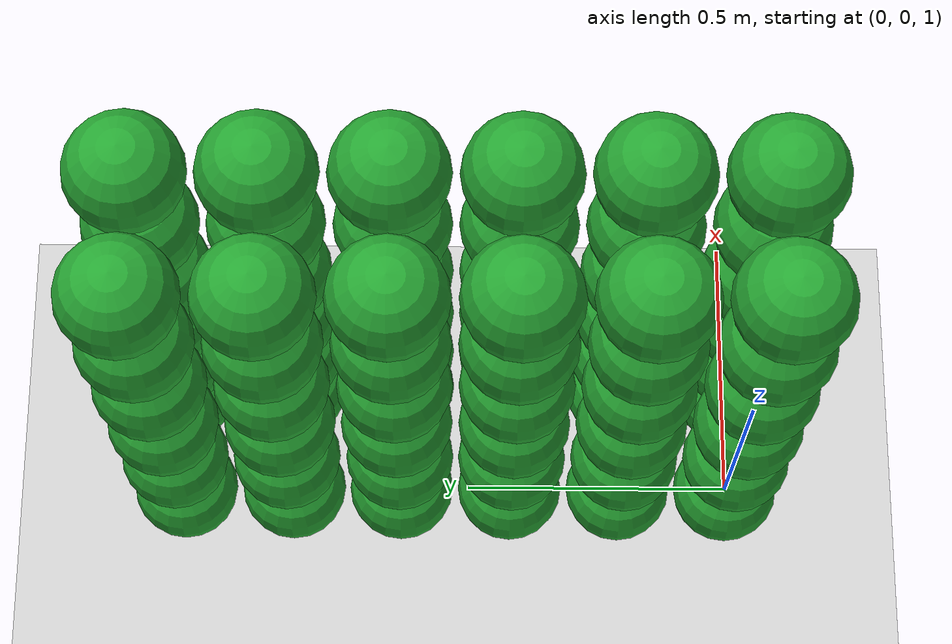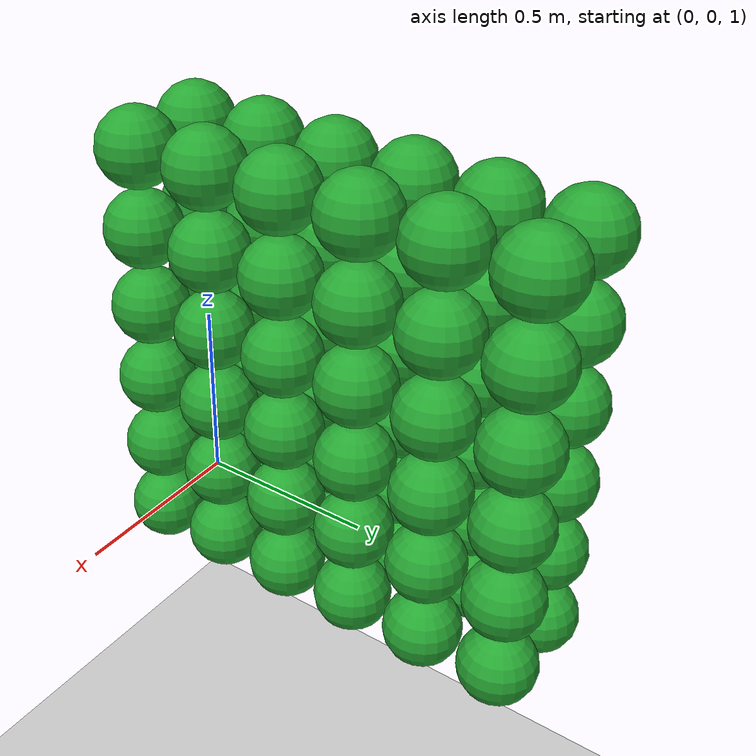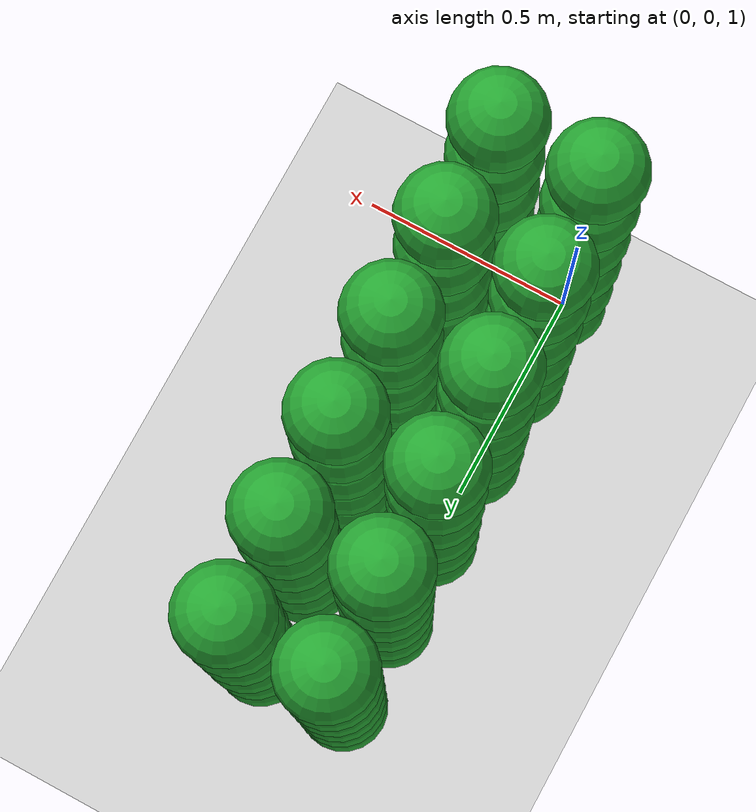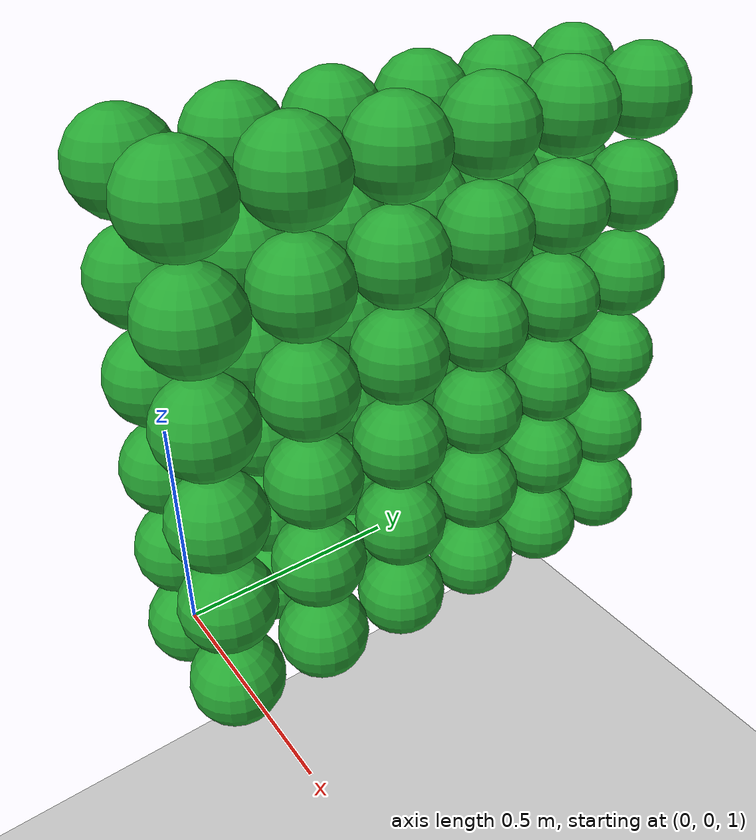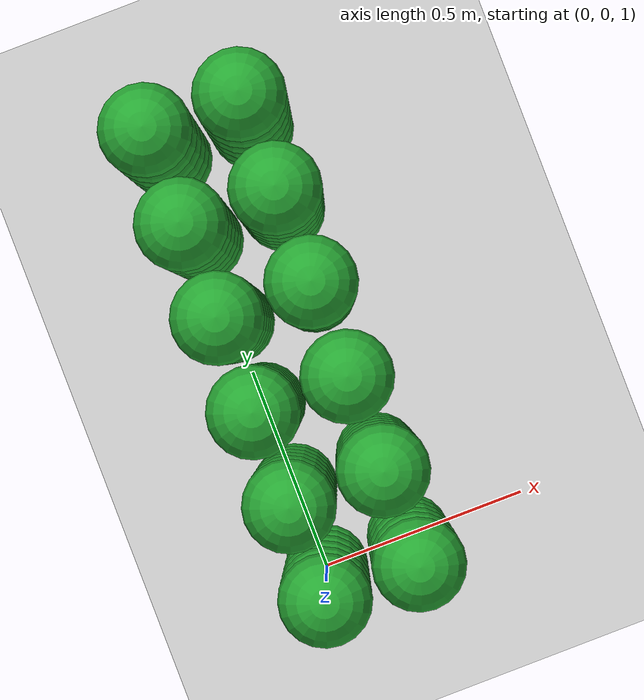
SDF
<sdf version="1.7">
 <world name="default">
  <model name="ground_plane">
   <static>1</static>
   <link name="link">
    <collision name="collision">
     <geometry><plane><normal>0 0 1</normal><size>100 100</size></plane></geometry>
     <surface>
      <contact><collide_bitmask>65535</collide_bitmask></contact>
      <friction><ode><mu>100</mu><mu2>50</mu2></ode></friction>
     </surface>
    </collision>
    <visual name="visual">
     <cast_shadows>0</cast_shadows>
     <geometry><plane><normal>0 0 1</normal><size>100 100</size></plane></geometry>
     <material>
      <script><uri>file://media/materials/scripts/gazebo.material</uri><name>Gazebo/Grey</name></script>
     </material>
    </visual>
   </link>
  </model>
  <model name="ball_0">
   <pose>0.000000 0.000000 1.000000 0 0 0</pose>
   <link name="link">
    <inertial><mass>10.000000</mass></inertial>
    <collision name="collision">
     <geometry><sphere><radius>0.100000</radius></sphere></geometry>
     <surface><friction><ode><mu>0</mu><mu2>0</mu2></ode></friction></surface>
    </collision>
    <visual name="visual">
     <geometry><sphere><radius>0.100000</radius></sphere></geometry>
     <material>
      <script><name>Gazebo/Green</name><uri>file://media/materials/scripts/gazebo.material</uri></script>
     </material>
    </visual>
   </link>
  </model>
  <model name="ball_1">
   <pose>0.000000 0.000000 1.209955 0 0 0</pose>
   <link name="link">
    <inertial><mass>10.000000</mass></inertial>
    <collision name="collision">
     <geometry><sphere><radius>0.100000</radius></sphere></geometry>
     <surface><friction><ode><mu>0</mu><mu2>0</mu2></ode></friction></surface>
    </collision>
    <visual name="visual">
     <geometry><sphere><radius>0.100000</radius></sphere></geometry>
     <material>
      <script><name>Gazebo/Green</name><uri>file://media/materials/scripts/gazebo.material</uri></script>
     </material>
    </visual>
   </link>
  </model>
  <model name="ball_2">
   <pose>0.000000 0.000000 1.420072 0 0 0</pose>
   <link name="link">
    <inertial><mass>10.000000</mass></inertial>
    <collision name="collision">
     <geometry><sphere><radius>0.100000</radius></sphere></geometry>
     <surface><friction><ode><mu>0</mu><mu2>0</mu2></ode></friction></surface>
    </collision>
    <visual name="visual">
     <geometry><sphere><radius>0.100000</radius></sphere></geometry>
     <material>
      <script><name>Gazebo/Green</name><uri>file://media/materials/scripts/gazebo.material</uri></script>
     </material>
    </visual>
   </link>
  </model>
  <model name="ball_3">
   <pose>0.000000 0.000000 1.629689 0 0 0</pose>
   <link name="link">
    <inertial><mass>10.000000</mass></inertial>
    <collision name="collision">
     <geometry><sphere><radius>0.100000</radius></sphere></geometry>
     <surface><friction><ode><mu>0</mu><mu2>0</mu2></ode></friction></surface>
    </collision>
    <visual name="visual">
     <geometry><sphere><radius>0.100000</radius></sphere></geometry>
     <material>
      <script><name>Gazebo/Green</name><uri>file://media/materials/scripts/gazebo.material</uri></script>
     </material>
    </visual>
   </link>
  </model>
  <model name="ball_4">
   <pose>0.000000 0.000000 1.840104 0 0 0</pose>
   <link name="link">
    <inertial><mass>10.000000</mass></inertial>
    <collision name="collision">
     <geometry><sphere><radius>0.100000</radius></sphere></geometry>
     <surface><friction><ode><mu>0</mu><mu2>0</mu2></ode></friction></surface>
    </collision>
    <visual name="visual">
     <geometry><sphere><radius>0.100000</radius></sphere></geometry>
     <material>
      <script><name>Gazebo/Green</name><uri>file://media/materials/scripts/gazebo.material</uri></script>
     </material>
    </visual>
   </link>
  </model>
  <model name="ball_5">
   <pose>0.000000 0.000000 2.049521 0 0 0</pose>
   <link name="link">
    <inertial><mass>10.000000</mass></inertial>
    <collision name="collision">
     <geometry><sphere><radius>0.100000</radius></sphere></geometry>
     <surface><friction><ode><mu>0</mu><mu2>0</mu2></ode></friction></surface>
    </collision>
    <visual name="visual">
     <geometry><sphere><radius>0.100000</radius></sphere></geometry>
     <material>
      <script><name>Gazebo/Green</name><uri>file://media/materials/scripts/gazebo.material</uri></script>
     </material>
    </visual>
   </link>
  </model>
  <model name="ball_6">
   <pose>0.000000 0.209839 1.000000 0 0 0</pose>
   <link name="link">
    <inertial><mass>10.000000</mass></inertial>
    <collision name="collision">
     <geometry><sphere><radius>0.100000</radius></sphere></geometry>
     <surface><friction><ode><mu>0</mu><mu2>0</mu2></ode></friction></surface>
    </collision>
    <visual name="visual">
     <geometry><sphere><radius>0.100000</radius></sphere></geometry>
     <material>
      <script><name>Gazebo/Green</name><uri>file://media/materials/scripts/gazebo.material</uri></script>
     </material>
    </visual>
   </link>
  </model>
  <model name="ball_7">
   <pose>0.000000 0.210104 1.210104 0 0 0</pose>
   <link name="link">
    <inertial><mass>10.000000</mass></inertial>
    <collision name="collision">
     <geometry><sphere><radius>0.100000</radius></sphere></geometry>
     <surface><friction><ode><mu>0</mu><mu2>0</mu2></ode></friction></surface>
    </collision>
    <visual name="visual">
     <geometry><sphere><radius>0.100000</radius></sphere></geometry>
     <material>
      <script><name>Gazebo/Green</name><uri>file://media/materials/scripts/gazebo.material</uri></script>
     </material>
    </visual>
   </link>
  </model>
  <model name="ball_8">
   <pose>0.000000 0.209921 1.419842 0 0 0</pose>
   <link name="link">
    <inertial><mass>10.000000</mass></inertial>
    <collision name="collision">
     <geometry><sphere><radius>0.100000</radius></sphere></geometry>
     <surface><friction><ode><mu>0</mu><mu2>0</mu2></ode></friction></surface>
    </collision>
    <visual name="visual">
     <geometry><sphere><radius>0.100000</radius></sphere></geometry>
     <material>
      <script><name>Gazebo/Green</name><uri>file://media/materials/scripts/gazebo.material</uri></script>
     </material>
    </visual>
   </link>
  </model>
  <model name="ball_9">
   <pose>0.000000 0.209934 1.629803 0 0 0</pose>
   <link name="link">
    <inertial><mass>10.000000</mass></inertial>
    <collision name="collision">
     <geometry><sphere><radius>0.100000</radius></sphere></geometry>
     <surface><friction><ode><mu>0</mu><mu2>0</mu2></ode></friction></surface>
    </collision>
    <visual name="visual">
     <geometry><sphere><radius>0.100000</radius></sphere></geometry>
     <material>
      <script><name>Gazebo/Green</name><uri>file://media/materials/scripts/gazebo.material</uri></script>
     </material>
    </visual>
   </link>
  </model>
  <model name="ball_10">
   <pose>0.000000 0.210197 1.840787 0 0 0</pose>
   <link name="link">
    <inertial><mass>10.000000</mass></inertial>
    <collision name="collision">
     <geometry><sphere><radius>0.100000</radius></sphere></geometry>
     <surface><friction><ode><mu>0</mu><mu2>0</mu2></ode></friction></surface>
    </collision>
    <visual name="visual">
     <geometry><sphere><radius>0.100000</radius></sphere></geometry>
     <material>
      <script><name>Gazebo/Green</name><uri>file://media/materials/scripts/gazebo.material</uri></script>
     </material>
    </visual>
   </link>
  </model>
  <model name="ball_11">
   <pose>0.000000 0.210185 2.050924 0 0 0</pose>
   <link name="link">
    <inertial><mass>10.000000</mass></inertial>
    <collision name="collision">
     <geometry><sphere><radius>0.100000</radius></sphere></geometry>
     <surface><friction><ode><mu>0</mu><mu2>0</mu2></ode></friction></surface>
    </collision>
    <visual name="visual">
     <geometry><sphere><radius>0.100000</radius></sphere></geometry>
     <material>
      <script><name>Gazebo/Green</name><uri>file://media/materials/scripts/gazebo.material</uri></script>
     </material>
    </visual>
   </link>
  </model>
  <model name="ball_12">
   <pose>0.000000 0.420170 1.000000 0 0 0</pose>
   <link name="link">
    <inertial><mass>10.000000</mass></inertial>
    <collision name="collision">
     <geometry><sphere><radius>0.100000</radius></sphere></geometry>
     <surface><friction><ode><mu>0</mu><mu2>0</mu2></ode></friction></surface>
    </collision>
    <visual name="visual">
     <geometry><sphere><radius>0.100000</radius></sphere></geometry>
     <material>
      <script><name>Gazebo/Green</name><uri>file://media/materials/scripts/gazebo.material</uri></script>
     </material>
    </visual>
   </link>
  </model>
  <model name="ball_13">
   <pose>0.000000 0.420080 1.210040 0 0 0</pose>
   <link name="link">
    <inertial><mass>10.000000</mass></inertial>
    <collision name="collision">
     <geometry><sphere><radius>0.100000</radius></sphere></geometry>
     <surface><friction><ode><mu>0</mu><mu2>0</mu2></ode></friction></surface>
    </collision>
    <visual name="visual">
     <geometry><sphere><radius>0.100000</radius></sphere></geometry>
     <material>
      <script><name>Gazebo/Green</name><uri>file://media/materials/scripts/gazebo.material</uri></script>
     </material>
    </visual>
   </link>
  </model>
  <model name="ball_14">
   <pose>0.000000 0.419637 1.419637 0 0 0</pose>
   <link name="link">
    <inertial><mass>10.000000</mass></inertial>
    <collision name="collision">
     <geometry><sphere><radius>0.100000</radius></sphere></geometry>
     <surface><friction><ode><mu>0</mu><mu2>0</mu2></ode></friction></surface>
    </collision>
    <visual name="visual">
     <geometry><sphere><radius>0.100000</radius></sphere></geometry>
     <material>
      <script><name>Gazebo/Green</name><uri>file://media/materials/scripts/gazebo.material</uri></script>
     </material>
    </visual>
   </link>
  </model>
  <model name="ball_15">
   <pose>0.000000 0.419633 1.629450 0 0 0</pose>
   <link name="link">
    <inertial><mass>10.000000</mass></inertial>
    <collision name="collision">
     <geometry><sphere><radius>0.100000</radius></sphere></geometry>
     <surface><friction><ode><mu>0</mu><mu2>0</mu2></ode></friction></surface>
    </collision>
    <visual name="visual">
     <geometry><sphere><radius>0.100000</radius></sphere></geometry>
     <material>
      <script><name>Gazebo/Green</name><uri>file://media/materials/scripts/gazebo.material</uri></script>
     </material>
    </visual>
   </link>
  </model>
  <model name="ball_16">
   <pose>0.000000 0.420401 1.840802 0 0 0</pose>
   <link name="link">
    <inertial><mass>10.000000</mass></inertial>
    <collision name="collision">
     <geometry><sphere><radius>0.100000</radius></sphere></geometry>
     <surface><friction><ode><mu>0</mu><mu2>0</mu2></ode></friction></surface>
    </collision>
    <visual name="visual">
     <geometry><sphere><radius>0.100000</radius></sphere></geometry>
     <material>
      <script><name>Gazebo/Green</name><uri>file://media/materials/scripts/gazebo.material</uri></script>
     </material>
    </visual>
   </link>
  </model>
  <model name="ball_17">
   <pose>0.000000 0.419922 2.049804 0 0 0</pose>
   <link name="link">
    <inertial><mass>10.000000</mass></inertial>
    <collision name="collision">
     <geometry><sphere><radius>0.100000</radius></sphere></geometry>
     <surface><friction><ode><mu>0</mu><mu2>0</mu2></ode></friction></surface>
    </collision>
    <visual name="visual">
     <geometry><sphere><radius>0.100000</radius></sphere></geometry>
     <material>
      <script><name>Gazebo/Green</name><uri>file://media/materials/scripts/gazebo.material</uri></script>
     </material>
    </visual>
   </link>
  </model>
  <model name="ball_18">
   <pose>0.000000 0.630081 1.000000 0 0 0</pose>
   <link name="link">
    <inertial><mass>10.000000</mass></inertial>
    <collision name="collision">
     <geometry><sphere><radius>0.100000</radius></sphere></geometry>
     <surface><friction><ode><mu>0</mu><mu2>0</mu2></ode></friction></surface>
    </collision>
    <visual name="visual">
     <geometry><sphere><radius>0.100000</radius></sphere></geometry>
     <material>
      <script><name>Gazebo/Green</name><uri>file://media/materials/scripts/gazebo.material</uri></script>
     </material>
    </visual>
   </link>
  </model>
  <model name="ball_19">
   <pose>0.000000 0.629412 1.209804 0 0 0</pose>
   <link name="link">
    <inertial><mass>10.000000</mass></inertial>
    <collision name="collision">
     <geometry><sphere><radius>0.100000</radius></sphere></geometry>
     <surface><friction><ode><mu>0</mu><mu2>0</mu2></ode></friction></surface>
    </collision>
    <visual name="visual">
     <geometry><sphere><radius>0.100000</radius></sphere></geometry>
     <material>
      <script><name>Gazebo/Green</name><uri>file://media/materials/scripts/gazebo.material</uri></script>
     </material>
    </visual>
   </link>
  </model>
  <model name="ball_20">
   <pose>0.000000 0.630457 1.420305 0 0 0</pose>
   <link name="link">
    <inertial><mass>10.000000</mass></inertial>
    <collision name="collision">
     <geometry><sphere><radius>0.100000</radius></sphere></geometry>
     <surface><friction><ode><mu>0</mu><mu2>0</mu2></ode></friction></surface>
    </collision>
    <visual name="visual">
     <geometry><sphere><radius>0.100000</radius></sphere></geometry>
     <material>
      <script><name>Gazebo/Green</name><uri>file://media/materials/scripts/gazebo.material</uri></script>
     </material>
    </visual>
   </link>
  </model>
  <model name="ball_21">
   <pose>0.000000 0.629525 1.629525 0 0 0</pose>
   <link name="link">
    <inertial><mass>10.000000</mass></inertial>
    <collision name="collision">
     <geometry><sphere><radius>0.100000</radius></sphere></geometry>
     <surface><friction><ode><mu>0</mu><mu2>0</mu2></ode></friction></surface>
    </collision>
    <visual name="visual">
     <geometry><sphere><radius>0.100000</radius></sphere></geometry>
     <material>
      <script><name>Gazebo/Green</name><uri>file://media/materials/scripts/gazebo.material</uri></script>
     </material>
    </visual>
   </link>
  </model>
  <model name="ball_22">
   <pose>0.000000 0.630356 1.840474 0 0 0</pose>
   <link name="link">
    <inertial><mass>10.000000</mass></inertial>
    <collision name="collision">
     <geometry><sphere><radius>0.100000</radius></sphere></geometry>
     <surface><friction><ode><mu>0</mu><mu2>0</mu2></ode></friction></surface>
    </collision>
    <visual name="visual">
     <geometry><sphere><radius>0.100000</radius></sphere></geometry>
     <material>
      <script><name>Gazebo/Green</name><uri>file://media/materials/scripts/gazebo.material</uri></script>
     </material>
    </visual>
   </link>
  </model>
  <model name="ball_23">
   <pose>0.000000 0.630212 2.050354 0 0 0</pose>
   <link name="link">
    <inertial><mass>10.000000</mass></inertial>
    <collision name="collision">
     <geometry><sphere><radius>0.100000</radius></sphere></geometry>
     <surface><friction><ode><mu>0</mu><mu2>0</mu2></ode></friction></surface>
    </collision>
    <visual name="visual">
     <geometry><sphere><radius>0.100000</radius></sphere></geometry>
     <material>
      <script><name>Gazebo/Green</name><uri>file://media/materials/scripts/gazebo.material</uri></script>
     </material>
    </visual>
   </link>
  </model>
  <model name="ball_24">
   <pose>0.000000 0.839498 1.000000 0 0 0</pose>
   <link name="link">
    <inertial><mass>10.000000</mass></inertial>
    <collision name="collision">
     <geometry><sphere><radius>0.100000</radius></sphere></geometry>
     <surface><friction><ode><mu>0</mu><mu2>0</mu2></ode></friction></surface>
    </collision>
    <visual name="visual">
     <geometry><sphere><radius>0.100000</radius></sphere></geometry>
     <material>
      <script><name>Gazebo/Green</name><uri>file://media/materials/scripts/gazebo.material</uri></script>
     </material>
    </visual>
   </link>
  </model>
  <model name="ball_25">
   <pose>0.000000 0.840572 1.210143 0 0 0</pose>
   <link name="link">
    <inertial><mass>10.000000</mass></inertial>
    <collision name="collision">
     <geometry><sphere><radius>0.100000</radius></sphere></geometry>
     <surface><friction><ode><mu>0</mu><mu2>0</mu2></ode></friction></surface>
    </collision>
    <visual name="visual">
     <geometry><sphere><radius>0.100000</radius></sphere></geometry>
     <material>
      <script><name>Gazebo/Green</name><uri>file://media/materials/scripts/gazebo.material</uri></script>
     </material>
    </visual>
   </link>
  </model>
  <model name="ball_26">
   <pose>0.000000 0.839750 1.419875 0 0 0</pose>
   <link name="link">
    <inertial><mass>10.000000</mass></inertial>
    <collision name="collision">
     <geometry><sphere><radius>0.100000</radius></sphere></geometry>
     <surface><friction><ode><mu>0</mu><mu2>0</mu2></ode></friction></surface>
    </collision>
    <visual name="visual">
     <geometry><sphere><radius>0.100000</radius></sphere></geometry>
     <material>
      <script><name>Gazebo/Green</name><uri>file://media/materials/scripts/gazebo.material</uri></script>
     </material>
    </visual>
   </link>
  </model>
  <model name="ball_27">
   <pose>0.000000 0.839731 1.629798 0 0 0</pose>
   <link name="link">
    <inertial><mass>10.000000</mass></inertial>
    <collision name="collision">
     <geometry><sphere><radius>0.100000</radius></sphere></geometry>
     <surface><friction><ode><mu>0</mu><mu2>0</mu2></ode></friction></surface>
    </collision>
    <visual name="visual">
     <geometry><sphere><radius>0.100000</radius></sphere></geometry>
     <material>
      <script><name>Gazebo/Green</name><uri>file://media/materials/scripts/gazebo.material</uri></script>
     </material>
    </visual>
   </link>
  </model>
  <model name="ball_28">
   <pose>0.000000 0.839965 1.839965 0 0 0</pose>
   <link name="link">
    <inertial><mass>10.000000</mass></inertial>
    <collision name="collision">
     <geometry><sphere><radius>0.100000</radius></sphere></geometry>
     <surface><friction><ode><mu>0</mu><mu2>0</mu2></ode></friction></surface>
    </collision>
    <visual name="visual">
     <geometry><sphere><radius>0.100000</radius></sphere></geometry>
     <material>
      <script><name>Gazebo/Green</name><uri>file://media/materials/scripts/gazebo.material</uri></script>
     </material>
    </visual>
   </link>
  </model>
  <model name="ball_29">
   <pose>0.000000 0.839703 2.049629 0 0 0</pose>
   <link name="link">
    <inertial><mass>10.000000</mass></inertial>
    <collision name="collision">
     <geometry><sphere><radius>0.100000</radius></sphere></geometry>
     <surface><friction><ode><mu>0</mu><mu2>0</mu2></ode></friction></surface>
    </collision>
    <visual name="visual">
     <geometry><sphere><radius>0.100000</radius></sphere></geometry>
     <material>
      <script><name>Gazebo/Green</name><uri>file://media/materials/scripts/gazebo.material</uri></script>
     </material>
    </visual>
   </link>
  </model>
  <model name="ball_30">
   <pose>0.000000 1.050613 1.000000 0 0 0</pose>
   <link name="link">
    <inertial><mass>10.000000</mass></inertial>
    <collision name="collision">
     <geometry><sphere><radius>0.100000</radius></sphere></geometry>
     <surface><friction><ode><mu>0</mu><mu2>0</mu2></ode></friction></surface>
    </collision>
    <visual name="visual">
     <geometry><sphere><radius>0.100000</radius></sphere></geometry>
     <material>
      <script><name>Gazebo/Green</name><uri>file://media/materials/scripts/gazebo.material</uri></script>
     </material>
    </visual>
   </link>
  </model>
  <model name="ball_31">
   <pose>0.000000 1.050247 1.210049 0 0 0</pose>
   <link name="link">
    <inertial><mass>10.000000</mass></inertial>
    <collision name="collision">
     <geometry><sphere><radius>0.100000</radius></sphere></geometry>
     <surface><friction><ode><mu>0</mu><mu2>0</mu2></ode></friction></surface>
    </collision>
    <visual name="visual">
     <geometry><sphere><radius>0.100000</radius></sphere></geometry>
     <material>
      <script><name>Gazebo/Green</name><uri>file://media/materials/scripts/gazebo.material</uri></script>
     </material>
    </visual>
   </link>
  </model>
  <model name="ball_32">
   <pose>0.000000 1.049415 1.419766 0 0 0</pose>
   <link name="link">
    <inertial><mass>10.000000</mass></inertial>
    <collision name="collision">
     <geometry><sphere><radius>0.100000</radius></sphere></geometry>
     <surface><friction><ode><mu>0</mu><mu2>0</mu2></ode></friction></surface>
    </collision>
    <visual name="visual">
     <geometry><sphere><radius>0.100000</radius></sphere></geometry>
     <material>
      <script><name>Gazebo/Green</name><uri>file://media/materials/scripts/gazebo.material</uri></script>
     </material>
    </visual>
   </link>
  </model>
  <model name="ball_33">
   <pose>0.000000 1.049330 1.629598 0 0 0</pose>
   <link name="link">
    <inertial><mass>10.000000</mass></inertial>
    <collision name="collision">
     <geometry><sphere><radius>0.100000</radius></sphere></geometry>
     <surface><friction><ode><mu>0</mu><mu2>0</mu2></ode></friction></surface>
    </collision>
    <visual name="visual">
     <geometry><sphere><radius>0.100000</radius></sphere></geometry>
     <material>
      <script><name>Gazebo/Green</name><uri>file://media/materials/scripts/gazebo.material</uri></script>
     </material>
    </visual>
   </link>
  </model>
  <model name="ball_34">
   <pose>0.000000 1.049641 1.839713 0 0 0</pose>
   <link name="link">
    <inertial><mass>10.000000</mass></inertial>
    <collision name="collision">
     <geometry><sphere><radius>0.100000</radius></sphere></geometry>
     <surface><friction><ode><mu>0</mu><mu2>0</mu2></ode></friction></surface>
    </collision>
    <visual name="visual">
     <geometry><sphere><radius>0.100000</radius></sphere></geometry>
     <material>
      <script><name>Gazebo/Green</name><uri>file://media/materials/scripts/gazebo.material</uri></script>
     </material>
    </visual>
   </link>
  </model>
  <model name="ball_35">
   <pose>0.000000 1.049948 2.049948 0 0 0</pose>
   <link name="link">
    <inertial><mass>10.000000</mass></inertial>
    <collision name="collision">
     <geometry><sphere><radius>0.100000</radius></sphere></geometry>
     <surface><friction><ode><mu>0</mu><mu2>0</mu2></ode></friction></surface>
    </collision>
    <visual name="visual">
     <geometry><sphere><radius>0.100000</radius></sphere></geometry>
     <material>
      <script><name>Gazebo/Green</name><uri>file://media/materials/scripts/gazebo.material</uri></script>
     </material>
    </visual>
   </link>
  </model>
  <model name="ball_36">
   <pose>0.210188 0.000000 1.000000 0 0 0</pose>
   <link name="link">
    <inertial><mass>10.000000</mass></inertial>
    <collision name="collision">
     <geometry><sphere><radius>0.100000</radius></sphere></geometry>
     <surface><friction><ode><mu>0</mu><mu2>0</mu2></ode></friction></surface>
    </collision>
    <visual name="visual">
     <geometry><sphere><radius>0.100000</radius></sphere></geometry>
     <material>
      <script><name>Gazebo/Green</name><uri>file://media/materials/scripts/gazebo.material</uri></script>
     </material>
    </visual>
   </link>
  </model>
  <model name="ball_37">
   <pose>0.210015 0.000000 1.210015 0 0 0</pose>
   <link name="link">
    <inertial><mass>10.000000</mass></inertial>
    <collision name="collision">
     <geometry><sphere><radius>0.100000</radius></sphere></geometry>
     <surface><friction><ode><mu>0</mu><mu2>0</mu2></ode></friction></surface>
    </collision>
    <visual name="visual">
     <geometry><sphere><radius>0.100000</radius></sphere></geometry>
     <material>
      <script><name>Gazebo/Green</name><uri>file://media/materials/scripts/gazebo.material</uri></script>
     </material>
    </visual>
   </link>
  </model>
  <model name="ball_38">
   <pose>0.209962 0.000000 1.419924 0 0 0</pose>
   <link name="link">
    <inertial><mass>10.000000</mass></inertial>
    <collision name="collision">
     <geometry><sphere><radius>0.100000</radius></sphere></geometry>
     <surface><friction><ode><mu>0</mu><mu2>0</mu2></ode></friction></surface>
    </collision>
    <visual name="visual">
     <geometry><sphere><radius>0.100000</radius></sphere></geometry>
     <material>
      <script><name>Gazebo/Green</name><uri>file://media/materials/scripts/gazebo.material</uri></script>
     </material>
    </visual>
   </link>
  </model>
  <model name="ball_39">
   <pose>0.209910 0.000000 1.629731 0 0 0</pose>
   <link name="link">
    <inertial><mass>10.000000</mass></inertial>
    <collision name="collision">
     <geometry><sphere><radius>0.100000</radius></sphere></geometry>
     <surface><friction><ode><mu>0</mu><mu2>0</mu2></ode></friction></surface>
    </collision>
    <visual name="visual">
     <geometry><sphere><radius>0.100000</radius></sphere></geometry>
     <material>
      <script><name>Gazebo/Green</name><uri>file://media/materials/scripts/gazebo.material</uri></script>
     </material>
    </visual>
   </link>
  </model>
  <model name="ball_40">
   <pose>0.210207 0.000000 1.840830 0 0 0</pose>
   <link name="link">
    <inertial><mass>10.000000</mass></inertial>
    <collision name="collision">
     <geometry><sphere><radius>0.100000</radius></sphere></geometry>
     <surface><friction><ode><mu>0</mu><mu2>0</mu2></ode></friction></surface>
    </collision>
    <visual name="visual">
     <geometry><sphere><radius>0.100000</radius></sphere></geometry>
     <material>
      <script><name>Gazebo/Green</name><uri>file://media/materials/scripts/gazebo.material</uri></script>
     </material>
    </visual>
   </link>
  </model>
  <model name="ball_41">
   <pose>0.209830 0.000000 2.049150 0 0 0</pose>
   <link name="link">
    <inertial><mass>10.000000</mass></inertial>
    <collision name="collision">
     <geometry><sphere><radius>0.100000</radius></sphere></geometry>
     <surface><friction><ode><mu>0</mu><mu2>0</mu2></ode></friction></surface>
    </collision>
    <visual name="visual">
     <geometry><sphere><radius>0.100000</radius></sphere></geometry>
     <material>
      <script><name>Gazebo/Green</name><uri>file://media/materials/scripts/gazebo.material</uri></script>
     </material>
    </visual>
   </link>
  </model>
  <model name="ball_42">
   <pose>0.210011 0.210011 1.000000 0 0 0</pose>
   <link name="link">
    <inertial><mass>10.000000</mass></inertial>
    <collision name="collision">
     <geometry><sphere><radius>0.100000</radius></sphere></geometry>
     <surface><friction><ode><mu>0</mu><mu2>0</mu2></ode></friction></surface>
    </collision>
    <visual name="visual">
     <geometry><sphere><radius>0.100000</radius></sphere></geometry>
     <material>
      <script><name>Gazebo/Green</name><uri>file://media/materials/scripts/gazebo.material</uri></script>
     </material>
    </visual>
   </link>
  </model>
  <model name="ball_43">
   <pose>0.209952 0.209952 1.209952 0 0 0</pose>
   <link name="link">
    <inertial><mass>10.000000</mass></inertial>
    <collision name="collision">
     <geometry><sphere><radius>0.100000</radius></sphere></geometry>
     <surface><friction><ode><mu>0</mu><mu2>0</mu2></ode></friction></surface>
    </collision>
    <visual name="visual">
     <geometry><sphere><radius>0.100000</radius></sphere></geometry>
     <material>
      <script><name>Gazebo/Green</name><uri>file://media/materials/scripts/gazebo.material</uri></script>
     </material>
    </visual>
   </link>
  </model>
  <model name="ball_44">
   <pose>0.209913 0.209913 1.419826 0 0 0</pose>
   <link name="link">
    <inertial><mass>10.000000</mass></inertial>
    <collision name="collision">
     <geometry><sphere><radius>0.100000</radius></sphere></geometry>
     <surface><friction><ode><mu>0</mu><mu2>0</mu2></ode></friction></surface>
    </collision>
    <visual name="visual">
     <geometry><sphere><radius>0.100000</radius></sphere></geometry>
     <material>
      <script><name>Gazebo/Green</name><uri>file://media/materials/scripts/gazebo.material</uri></script>
     </material>
    </visual>
   </link>
  </model>
  <model name="ball_45">
   <pose>0.209845 0.209845 1.629534 0 0 0</pose>
   <link name="link">
    <inertial><mass>10.000000</mass></inertial>
    <collision name="collision">
     <geometry><sphere><radius>0.100000</radius></sphere></geometry>
     <surface><friction><ode><mu>0</mu><mu2>0</mu2></ode></friction></surface>
    </collision>
    <visual name="visual">
     <geometry><sphere><radius>0.100000</radius></sphere></geometry>
     <material>
      <script><name>Gazebo/Green</name><uri>file://media/materials/scripts/gazebo.material</uri></script>
     </material>
    </visual>
   </link>
  </model>
  <model name="ball_46">
   <pose>0.209902 0.209902 1.839610 0 0 0</pose>
   <link name="link">
    <inertial><mass>10.000000</mass></inertial>
    <collision name="collision">
     <geometry><sphere><radius>0.100000</radius></sphere></geometry>
     <surface><friction><ode><mu>0</mu><mu2>0</mu2></ode></friction></surface>
    </collision>
    <visual name="visual">
     <geometry><sphere><radius>0.100000</radius></sphere></geometry>
     <material>
      <script><name>Gazebo/Green</name><uri>file://media/materials/scripts/gazebo.material</uri></script>
     </material>
    </visual>
   </link>
  </model>
  <model name="ball_47">
   <pose>0.209962 0.209962 2.049812 0 0 0</pose>
   <link name="link">
    <inertial><mass>10.000000</mass></inertial>
    <collision name="collision">
     <geometry><sphere><radius>0.100000</radius></sphere></geometry>
     <surface><friction><ode><mu>0</mu><mu2>0</mu2></ode></friction></surface>
    </collision>
    <visual name="visual">
     <geometry><sphere><radius>0.100000</radius></sphere></geometry>
     <material>
      <script><name>Gazebo/Green</name><uri>file://media/materials/scripts/gazebo.material</uri></script>
     </material>
    </visual>
   </link>
  </model>
  <model name="ball_48">
   <pose>0.210029 0.420058 1.000000 0 0 0</pose>
   <link name="link">
    <inertial><mass>10.000000</mass></inertial>
    <collision name="collision">
     <geometry><sphere><radius>0.100000</radius></sphere></geometry>
     <surface><friction><ode><mu>0</mu><mu2>0</mu2></ode></friction></surface>
    </collision>
    <visual name="visual">
     <geometry><sphere><radius>0.100000</radius></sphere></geometry>
     <material>
      <script><name>Gazebo/Green</name><uri>file://media/materials/scripts/gazebo.material</uri></script>
     </material>
    </visual>
   </link>
  </model>
  <model name="ball_49">
   <pose>0.209908 0.419816 1.209908 0 0 0</pose>
   <link name="link">
    <inertial><mass>10.000000</mass></inertial>
    <collision name="collision">
     <geometry><sphere><radius>0.100000</radius></sphere></geometry>
     <surface><friction><ode><mu>0</mu><mu2>0</mu2></ode></friction></surface>
    </collision>
    <visual name="visual">
     <geometry><sphere><radius>0.100000</radius></sphere></geometry>
     <material>
      <script><name>Gazebo/Green</name><uri>file://media/materials/scripts/gazebo.material</uri></script>
     </material>
    </visual>
   </link>
  </model>
  <model name="ball_50">
   <pose>0.209878 0.419755 1.419755 0 0 0</pose>
   <link name="link">
    <inertial><mass>10.000000</mass></inertial>
    <collision name="collision">
     <geometry><sphere><radius>0.100000</radius></sphere></geometry>
     <surface><friction><ode><mu>0</mu><mu2>0</mu2></ode></friction></surface>
    </collision>
    <visual name="visual">
     <geometry><sphere><radius>0.100000</radius></sphere></geometry>
     <material>
      <script><name>Gazebo/Green</name><uri>file://media/materials/scripts/gazebo.material</uri></script>
     </material>
    </visual>
   </link>
  </model>
  <model name="ball_51">
   <pose>0.209964 0.419928 1.629892 0 0 0</pose>
   <link name="link">
    <inertial><mass>10.000000</mass></inertial>
    <collision name="collision">
     <geometry><sphere><radius>0.100000</radius></sphere></geometry>
     <surface><friction><ode><mu>0</mu><mu2>0</mu2></ode></friction></surface>
    </collision>
    <visual name="visual">
     <geometry><sphere><radius>0.100000</radius></sphere></geometry>
     <material>
      <script><name>Gazebo/Green</name><uri>file://media/materials/scripts/gazebo.material</uri></script>
     </material>
    </visual>
   </link>
  </model>
  <model name="ball_52">
   <pose>0.209999 0.419997 1.839995 0 0 0</pose>
   <link name="link">
    <inertial><mass>10.000000</mass></inertial>
    <collision name="collision">
     <geometry><sphere><radius>0.100000</radius></sphere></geometry>
     <surface><friction><ode><mu>0</mu><mu2>0</mu2></ode></friction></surface>
    </collision>
    <visual name="visual">
     <geometry><sphere><radius>0.100000</radius></sphere></geometry>
     <material>
      <script><name>Gazebo/Green</name><uri>file://media/materials/scripts/gazebo.material</uri></script>
     </material>
    </visual>
   </link>
  </model>
  <model name="ball_53">
   <pose>0.209822 0.419643 2.049108 0 0 0</pose>
   <link name="link">
    <inertial><mass>10.000000</mass></inertial>
    <collision name="collision">
     <geometry><sphere><radius>0.100000</radius></sphere></geometry>
     <surface><friction><ode><mu>0</mu><mu2>0</mu2></ode></friction></surface>
    </collision>
    <visual name="visual">
     <geometry><sphere><radius>0.100000</radius></sphere></geometry>
     <material>
      <script><name>Gazebo/Green</name><uri>file://media/materials/scripts/gazebo.material</uri></script>
     </material>
    </visual>
   </link>
  </model>
  <model name="ball_54">
   <pose>0.209842 0.629525 1.000000 0 0 0</pose>
   <link name="link">
    <inertial><mass>10.000000</mass></inertial>
    <collision name="collision">
     <geometry><sphere><radius>0.100000</radius></sphere></geometry>
     <surface><friction><ode><mu>0</mu><mu2>0</mu2></ode></friction></surface>
    </collision>
    <visual name="visual">
     <geometry><sphere><radius>0.100000</radius></sphere></geometry>
     <material>
      <script><name>Gazebo/Green</name><uri>file://media/materials/scripts/gazebo.material</uri></script>
     </material>
    </visual>
   </link>
  </model>
  <model name="ball_55">
   <pose>0.209910 0.629731 1.209910 0 0 0</pose>
   <link name="link">
    <inertial><mass>10.000000</mass></inertial>
    <collision name="collision">
     <geometry><sphere><radius>0.100000</radius></sphere></geometry>
     <surface><friction><ode><mu>0</mu><mu2>0</mu2></ode></friction></surface>
    </collision>
    <visual name="visual">
     <geometry><sphere><radius>0.100000</radius></sphere></geometry>
     <material>
      <script><name>Gazebo/Green</name><uri>file://media/materials/scripts/gazebo.material</uri></script>
     </material>
    </visual>
   </link>
  </model>
  <model name="ball_56">
   <pose>0.209878 0.629633 1.419755 0 0 0</pose>
   <link name="link">
    <inertial><mass>10.000000</mass></inertial>
    <collision name="collision">
     <geometry><sphere><radius>0.100000</radius></sphere></geometry>
     <surface><friction><ode><mu>0</mu><mu2>0</mu2></ode></friction></surface>
    </collision>
    <visual name="visual">
     <geometry><sphere><radius>0.100000</radius></sphere></geometry>
     <material>
      <script><name>Gazebo/Green</name><uri>file://media/materials/scripts/gazebo.material</uri></script>
     </material>
    </visual>
   </link>
  </model>
  <model name="ball_57">
   <pose>0.209917 0.629750 1.629750 0 0 0</pose>
   <link name="link">
    <inertial><mass>10.000000</mass></inertial>
    <collision name="collision">
     <geometry><sphere><radius>0.100000</radius></sphere></geometry>
     <surface><friction><ode><mu>0</mu><mu2>0</mu2></ode></friction></surface>
    </collision>
    <visual name="visual">
     <geometry><sphere><radius>0.100000</radius></sphere></geometry>
     <material>
      <script><name>Gazebo/Green</name><uri>file://media/materials/scripts/gazebo.material</uri></script>
     </material>
    </visual>
   </link>
  </model>
  <model name="ball_58">
   <pose>0.210074 0.630223 1.840297 0 0 0</pose>
   <link name="link">
    <inertial><mass>10.000000</mass></inertial>
    <collision name="collision">
     <geometry><sphere><radius>0.100000</radius></sphere></geometry>
     <surface><friction><ode><mu>0</mu><mu2>0</mu2></ode></friction></surface>
    </collision>
    <visual name="visual">
     <geometry><sphere><radius>0.100000</radius></sphere></geometry>
     <material>
      <script><name>Gazebo/Green</name><uri>file://media/materials/scripts/gazebo.material</uri></script>
     </material>
    </visual>
   </link>
  </model>
  <model name="ball_59">
   <pose>0.210116 0.630349 2.050582 0 0 0</pose>
   <link name="link">
    <inertial><mass>10.000000</mass></inertial>
    <collision name="collision">
     <geometry><sphere><radius>0.100000</radius></sphere></geometry>
     <surface><friction><ode><mu>0</mu><mu2>0</mu2></ode></friction></surface>
    </collision>
    <visual name="visual">
     <geometry><sphere><radius>0.100000</radius></sphere></geometry>
     <material>
      <script><name>Gazebo/Green</name><uri>file://media/materials/scripts/gazebo.material</uri></script>
     </material>
    </visual>
   </link>
  </model>
  <model name="ball_60">
   <pose>0.209937 0.839747 1.000000 0 0 0</pose>
   <link name="link">
    <inertial><mass>10.000000</mass></inertial>
    <collision name="collision">
     <geometry><sphere><radius>0.100000</radius></sphere></geometry>
     <surface><friction><ode><mu>0</mu><mu2>0</mu2></ode></friction></surface>
    </collision>
    <visual name="visual">
     <geometry><sphere><radius>0.100000</radius></sphere></geometry>
     <material>
      <script><name>Gazebo/Green</name><uri>file://media/materials/scripts/gazebo.material</uri></script>
     </material>
    </visual>
   </link>
  </model>
  <model name="ball_61">
   <pose>0.209949 0.839797 1.209949 0 0 0</pose>
   <link name="link">
    <inertial><mass>10.000000</mass></inertial>
    <collision name="collision">
     <geometry><sphere><radius>0.100000</radius></sphere></geometry>
     <surface><friction><ode><mu>0</mu><mu2>0</mu2></ode></friction></surface>
    </collision>
    <visual name="visual">
     <geometry><sphere><radius>0.100000</radius></sphere></geometry>
     <material>
      <script><name>Gazebo/Green</name><uri>file://media/materials/scripts/gazebo.material</uri></script>
     </material>
    </visual>
   </link>
  </model>
  <model name="ball_62">
   <pose>0.210200 0.840802 1.420401 0 0 0</pose>
   <link name="link">
    <inertial><mass>10.000000</mass></inertial>
    <collision name="collision">
     <geometry><sphere><radius>0.100000</radius></sphere></geometry>
     <surface><friction><ode><mu>0</mu><mu2>0</mu2></ode></friction></surface>
    </collision>
    <visual name="visual">
     <geometry><sphere><radius>0.100000</radius></sphere></geometry>
     <material>
      <script><name>Gazebo/Green</name><uri>file://media/materials/scripts/gazebo.material</uri></script>
     </material>
    </visual>
   </link>
  </model>
  <model name="ball_63">
   <pose>0.210093 0.840373 1.630280 0 0 0</pose>
   <link name="link">
    <inertial><mass>10.000000</mass></inertial>
    <collision name="collision">
     <geometry><sphere><radius>0.100000</radius></sphere></geometry>
     <surface><friction><ode><mu>0</mu><mu2>0</mu2></ode></friction></surface>
    </collision>
    <visual name="visual">
     <geometry><sphere><radius>0.100000</radius></sphere></geometry>
     <material>
      <script><name>Gazebo/Green</name><uri>file://media/materials/scripts/gazebo.material</uri></script>
     </material>
    </visual>
   </link>
  </model>
  <model name="ball_64">
   <pose>0.210164 0.840656 1.840656 0 0 0</pose>
   <link name="link">
    <inertial><mass>10.000000</mass></inertial>
    <collision name="collision">
     <geometry><sphere><radius>0.100000</radius></sphere></geometry>
     <surface><friction><ode><mu>0</mu><mu2>0</mu2></ode></friction></surface>
    </collision>
    <visual name="visual">
     <geometry><sphere><radius>0.100000</radius></sphere></geometry>
     <material>
      <script><name>Gazebo/Green</name><uri>file://media/materials/scripts/gazebo.material</uri></script>
     </material>
    </visual>
   </link>
  </model>
  <model name="ball_65">
   <pose>0.210013 0.840051 2.050064 0 0 0</pose>
   <link name="link">
    <inertial><mass>10.000000</mass></inertial>
    <collision name="collision">
     <geometry><sphere><radius>0.100000</radius></sphere></geometry>
     <surface><friction><ode><mu>0</mu><mu2>0</mu2></ode></friction></surface>
    </collision>
    <visual name="visual">
     <geometry><sphere><radius>0.100000</radius></sphere></geometry>
     <material>
      <script><name>Gazebo/Green</name><uri>file://media/materials/scripts/gazebo.material</uri></script>
     </material>
    </visual>
   </link>
  </model>
  <model name="ball_66">
   <pose>0.210123 1.050613 1.000000 0 0 0</pose>
   <link name="link">
    <inertial><mass>10.000000</mass></inertial>
    <collision name="collision">
     <geometry><sphere><radius>0.100000</radius></sphere></geometry>
     <surface><friction><ode><mu>0</mu><mu2>0</mu2></ode></friction></surface>
    </collision>
    <visual name="visual">
     <geometry><sphere><radius>0.100000</radius></sphere></geometry>
     <material>
      <script><name>Gazebo/Green</name><uri>file://media/materials/scripts/gazebo.material</uri></script>
     </material>
    </visual>
   </link>
  </model>
  <model name="ball_67">
   <pose>0.209844 1.049220 1.209844 0 0 0</pose>
   <link name="link">
    <inertial><mass>10.000000</mass></inertial>
    <collision name="collision">
     <geometry><sphere><radius>0.100000</radius></sphere></geometry>
     <surface><friction><ode><mu>0</mu><mu2>0</mu2></ode></friction></surface>
    </collision>
    <visual name="visual">
     <geometry><sphere><radius>0.100000</radius></sphere></geometry>
     <material>
      <script><name>Gazebo/Green</name><uri>file://media/materials/scripts/gazebo.material</uri></script>
     </material>
    </visual>
   </link>
  </model>
  <model name="ball_68">
   <pose>0.210158 1.050788 1.420315 0 0 0</pose>
   <link name="link">
    <inertial><mass>10.000000</mass></inertial>
    <collision name="collision">
     <geometry><sphere><radius>0.100000</radius></sphere></geometry>
     <surface><friction><ode><mu>0</mu><mu2>0</mu2></ode></friction></surface>
    </collision>
    <visual name="visual">
     <geometry><sphere><radius>0.100000</radius></sphere></geometry>
     <material>
      <script><name>Gazebo/Green</name><uri>file://media/materials/scripts/gazebo.material</uri></script>
     </material>
    </visual>
   </link>
  </model>
  <model name="ball_69">
   <pose>0.209962 1.049812 1.629887 0 0 0</pose>
   <link name="link">
    <inertial><mass>10.000000</mass></inertial>
    <collision name="collision">
     <geometry><sphere><radius>0.100000</radius></sphere></geometry>
     <surface><friction><ode><mu>0</mu><mu2>0</mu2></ode></friction></surface>
    </collision>
    <visual name="visual">
     <geometry><sphere><radius>0.100000</radius></sphere></geometry>
     <material>
      <script><name>Gazebo/Green</name><uri>file://media/materials/scripts/gazebo.material</uri></script>
     </material>
    </visual>
   </link>
  </model>
  <model name="ball_70">
   <pose>0.209925 1.049625 1.839700 0 0 0</pose>
   <link name="link">
    <inertial><mass>10.000000</mass></inertial>
    <collision name="collision">
     <geometry><sphere><radius>0.100000</radius></sphere></geometry>
     <surface><friction><ode><mu>0</mu><mu2>0</mu2></ode></friction></surface>
    </collision>
    <visual name="visual">
     <geometry><sphere><radius>0.100000</radius></sphere></geometry>
     <material>
      <script><name>Gazebo/Green</name><uri>file://media/materials/scripts/gazebo.material</uri></script>
     </material>
    </visual>
   </link>
  </model>
  <model name="ball_71">
   <pose>0.209868 1.049340 2.049340 0 0 0</pose>
   <link name="link">
    <inertial><mass>10.000000</mass></inertial>
    <collision name="collision">
     <geometry><sphere><radius>0.100000</radius></sphere></geometry>
     <surface><friction><ode><mu>0</mu><mu2>0</mu2></ode></friction></surface>
    </collision>
    <visual name="visual">
     <geometry><sphere><radius>0.100000</radius></sphere></geometry>
     <material>
      <script><name>Gazebo/Green</name><uri>file://media/materials/scripts/gazebo.material</uri></script>
     </material>
    </visual>
   </link>
  </model>
 </world>
</sdf>
